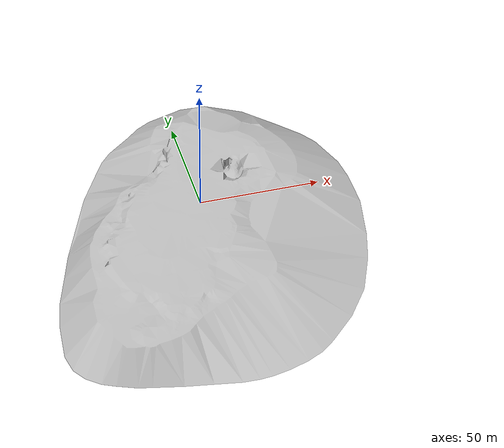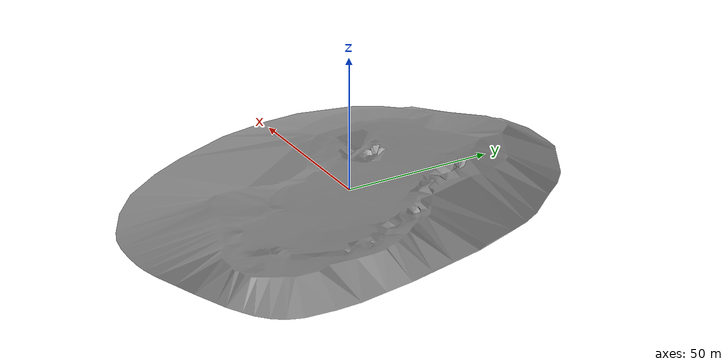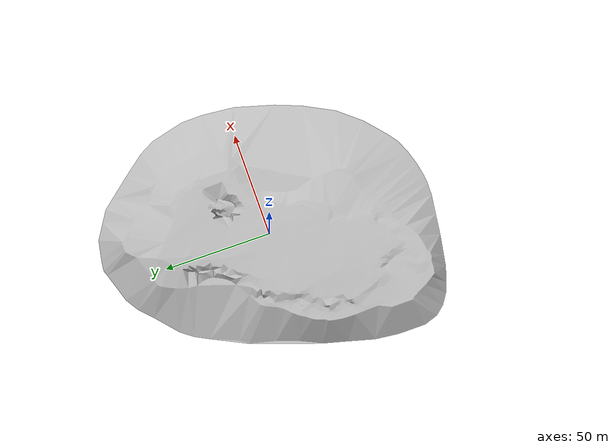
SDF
<?xml version="1.0" ?>
<sdf version="1.4">
  <model name="bamboo">
    <static>1</static>
    <link name="link">
      <static>true</static>
      <collision name="collision">
        <geometry>
          <mesh>
            <uri>model://bamboo/meshes/bamboo.dae</uri>
          </mesh>
        </geometry>
      </collision>
      <visual name="visual">
        <cast_shadows>false</cast_shadows>
        <geometry>
          <mesh>
            <uri>model://bamboo/meshes/bamboo.dae</uri>
          </mesh>
        </geometry>
      </visual>

    </link>
  </model>
</sdf>
